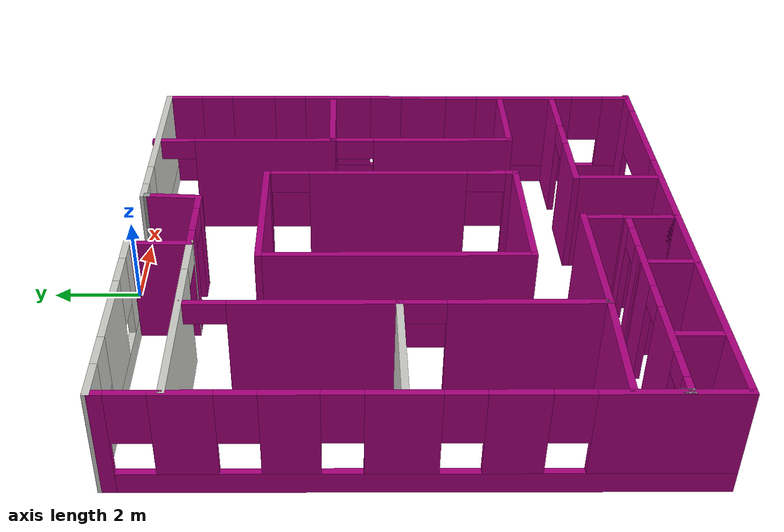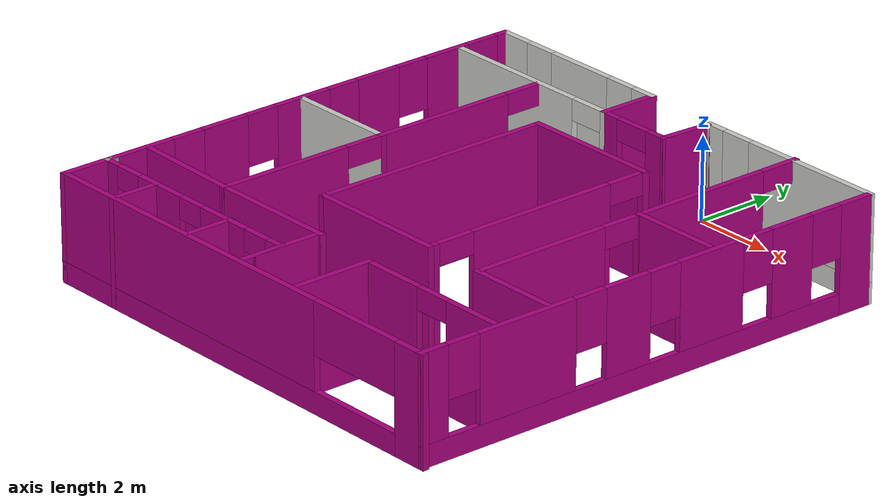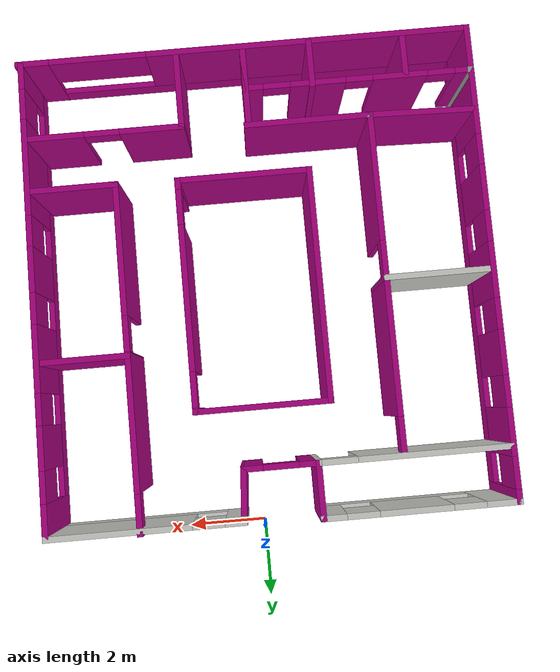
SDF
<sdf version="1.6">
 <model name="building1">
  <pose>-0.462899 -6.20828 0 0 -0 0</pose>
  <link name="Wall_0">
   <pose>-3.38263 6.03222 0 0 -0 0</pose>
   <visual name="Wall_0_Visual_0">
    <pose>-2.03324 0 1.25 0 -0 0</pose>
    <geometry><box><size>0.881817 0.15 2.5</size></box></geometry>
    <material>
     <script><uri>file://media/materials/scripts/gazebo.material</uri><name>Gazebo/CeilingTiled</name></script>
     <ambient>0.666667 0 0.498039 1</ambient>
    </material>
    <meta><layer>0</layer></meta>
   </visual>
   <collision name="Wall_0_Collision_0">
    <geometry><box><size>0.881817 0.15 2.5</size></box></geometry>
    <pose>-2.03324 0 1.25 0 -0 0</pose>
   </collision>
   <visual name="Wall_0_Visual_1">
    <pose>0.440909 0 0.25 0 -0 0</pose>
    <geometry><box><size>4.06648 0.15 0.5</size></box></geometry>
    <material>
     <script><uri>file://media/materials/scripts/gazebo.material</uri><name>Gazebo/CeilingTiled</name></script>
     <ambient>0.666667 0 0.498039 1</ambient>
    </material>
    <meta><layer>0</layer></meta>
   </visual>
   <collision name="Wall_0_Collision_1">
    <geometry><box><size>4.06648 0.15 0.5</size></box></geometry>
    <pose>0.440909 0 0.25 0 -0 0</pose>
   </collision>
   <visual name="Wall_0_Visual_2">
    <pose>0.115732 0 1.5 0 -0 0</pose>
    <geometry><box><size>1.81613 0.15 2</size></box></geometry>
    <material>
     <script><uri>file://media/materials/scripts/gazebo.material</uri><name>Gazebo/CeilingTiled</name></script>
     <ambient>0.666667 0 0.498039 1</ambient>
    </material>
    <meta><layer>0</layer></meta>
   </visual>
   <collision name="Wall_0_Collision_2">
    <geometry><box><size>1.81613 0.15 2</size></box></geometry>
    <pose>0.115732 0 1.5 0 -0 0</pose>
   </collision>
   <visual name="Wall_0_Visual_3">
    <pose>2.14897 0 1.5 0 -0 0</pose>
    <geometry><box><size>0.650352 0.15 2</size></box></geometry>
    <material>
     <script><uri>file://media/materials/scripts/gazebo.material</uri><name>Gazebo/CeilingTiled</name></script>
     <ambient>0.666667 0 0.498039 1</ambient>
    </material>
    <meta><layer>0</layer></meta>
   </visual>
   <collision name="Wall_0_Collision_3">
    <geometry><box><size>0.650352 0.15 2</size></box></geometry>
    <pose>2.14897 0 1.5 0 -0 0</pose>
   </collision>
   <visual name="Wall_0_Visual_4">
    <pose>-1.19233 0 1.9 0 -0 0</pose>
    <geometry><box><size>0.8 0.15 1.2</size></box></geometry>
    <material>
     <script><uri>file://media/materials/scripts/gazebo.material</uri><name>Gazebo/CeilingTiled</name></script>
     <ambient>0.666667 0 0.498039 1</ambient>
    </material>
    <meta><layer>0</layer></meta>
   </visual>
   <collision name="Wall_0_Collision_4">
    <geometry><box><size>0.8 0.15 1.2</size></box></geometry>
    <pose>-1.19233 0 1.9 0 -0 0</pose>
   </collision>
   <visual name="Wall_0_Visual_5">
    <pose>1.4238 0 1.9 0 -0 0</pose>
    <geometry><box><size>0.8 0.15 1.2</size></box></geometry>
    <material>
     <script><uri>file://media/materials/scripts/gazebo.material</uri><name>Gazebo/CeilingTiled</name></script>
     <ambient>0.666667 0 0.498039 1</ambient>
    </material>
    <meta><layer>0</layer></meta>
   </visual>
   <collision name="Wall_0_Collision_5">
    <geometry><box><size>0.8 0.15 1.2</size></box></geometry>
    <pose>1.4238 0 1.9 0 -0 0</pose>
   </collision>
  </link>
  <link name="Wall_1">
   <collision name="Wall_1_Collision">
    <geometry><box><size>1.5 0.15 2.5</size></box></geometry>
    <pose>0 0 1.25 0 -0 0</pose>
   </collision>
   <visual name="Wall_1_Visual">
    <pose>0 0 1.25 0 -0 0</pose>
    <geometry><box><size>1.5 0.15 2.5</size></box></geometry>
    <material>
     <script><uri>file://media/materials/scripts/gazebo.material</uri><name>Gazebo/Grey</name></script>
     <ambient>0.666667 0 0.498039 1</ambient>
    </material>
    <meta><layer>0</layer></meta>
   </visual>
   <pose>-0.983483 5.35722 0 0 0 -1.5708</pose>
  </link>
  <link name="Wall_12">
   <pose>0.020366 -6.03005 0 0 -0 3.14159</pose>
   <visual name="Wall_12_Visual_0">
    <pose>-5.39102 0 1.25 0 -0 0</pose>
    <geometry><box><size>0.866268 0.15 2.5</size></box></geometry>
    <material>
     <script><uri>file://media/materials/scripts/gazebo.material</uri><name>Gazebo/Grey</name></script>
     <ambient>0.666667 0 0.498039 1</ambient>
    </material>
    <meta><layer>0</layer></meta>
   </visual>
   <collision name="Wall_12_Collision_0">
    <geometry><box><size>0.866268 0.15 2.5</size></box></geometry>
    <pose>-5.39102 0 1.25 0 -0 0</pose>
   </collision>
   <visual name="Wall_12_Visual_1">
    <pose>0.433134 0 0.25 0 -0 0</pose>
    <geometry><box><size>10.782 0.15 0.5</size></box></geometry>
    <material>
     <script><uri>file://media/materials/scripts/gazebo.material</uri><name>Gazebo/Grey</name></script>
     <ambient>0.666667 0 0.498039 1</ambient>
    </material>
    <meta><layer>0</layer></meta>
   </visual>
   <collision name="Wall_12_Collision_1">
    <geometry><box><size>10.782 0.15 0.5</size></box></geometry>
    <pose>0.433134 0 0.25 0 -0 0</pose>
   </collision>
   <visual name="Wall_12_Visual_2">
    <pose>1.68313 0 1.5 0 -0 0</pose>
    <geometry><box><size>8.28203 0.15 2</size></box></geometry>
    <material>
     <script><uri>file://media/materials/scripts/gazebo.material</uri><name>Gazebo/Grey</name></script>
     <ambient>0.666667 0 0.498039 1</ambient>
    </material>
    <meta><layer>0</layer></meta>
   </visual>
   <collision name="Wall_12_Collision_2">
    <geometry><box><size>8.28203 0.15 2</size></box></geometry>
    <pose>1.68313 0 1.5 0 -0 0</pose>
   </collision>
   <visual name="Wall_12_Visual_3">
    <pose>-3.70788 0 1.9 0 -0 0</pose>
    <geometry><box><size>2.5 0.15 1.2</size></box></geometry>
    <material>
     <script><uri>file://media/materials/scripts/gazebo.material</uri><name>Gazebo/Grey</name></script>
     <ambient>0.666667 0 0.498039 1</ambient>
    </material>
    <meta><layer>0</layer></meta>
   </visual>
   <collision name="Wall_12_Collision_3">
    <geometry><box><size>2.5 0.15 1.2</size></box></geometry>
    <pose>-3.70788 0 1.9 0 -0 0</pose>
   </collision>
  </link>
  <link name="Wall_16">
   <pose>3.49934 3.82862 0 0 0 -1.5708</pose>
   <visual name="Wall_16_Visual_0">
    <pose>-2.18389 0 1.25 0 -0 0</pose>
    <geometry><box><size>0.132229 0.15 2.5</size></box></geometry>
    <material>
     <script><uri>file://media/materials/scripts/gazebo.material</uri><name>Gazebo/Grey</name></script>
     <ambient>0.666667 0 0.498039 1</ambient>
    </material>
    <meta><layer>0</layer></meta>
   </visual>
   <collision name="Wall_16_Collision_0">
    <geometry><box><size>0.132229 0.15 2.5</size></box></geometry>
    <pose>-2.18389 0 1.25 0 -0 0</pose>
   </collision>
   <visual name="Wall_16_Visual_1">
    <pose>0.516114 0 1.25 0 -0 0</pose>
    <geometry><box><size>3.46777 0.15 2.5</size></box></geometry>
    <material>
     <script><uri>file://media/materials/scripts/gazebo.material</uri><name>Gazebo/Grey</name></script>
     <ambient>0.666667 0 0.498039 1</ambient>
    </material>
    <meta><layer>0</layer></meta>
   </visual>
   <collision name="Wall_16_Collision_1">
    <geometry><box><size>3.46777 0.15 2.5</size></box></geometry>
    <pose>0.516114 0 1.25 0 -0 0</pose>
   </collision>
   <visual name="Wall_16_Visual_2">
    <pose>-1.66777 0 2.25 0 -0 0</pose>
    <geometry><box><size>0.9 0.15 0.5</size></box></geometry>
    <material>
     <script><uri>file://media/materials/scripts/gazebo.material</uri><name>Gazebo/Grey</name></script>
     <ambient>0.666667 0 0.498039 1</ambient>
    </material>
    <meta><layer>0</layer></meta>
   </visual>
   <collision name="Wall_16_Collision_2">
    <geometry><box><size>0.9 0.15 0.5</size></box></geometry>
    <pose>-1.66777 0 2.25 0 -0 0</pose>
   </collision>
  </link>
  <link name="Wall_18">
   <collision name="Wall_18_Collision">
    <geometry><box><size>2.25 0.15 2.5</size></box></geometry>
    <pose>0 0 1.25 0 -0 0</pose>
   </collision>
   <visual name="Wall_18_Visual">
    <pose>0 0 1.25 0 -0 0</pose>
    <geometry><box><size>2.25 0.15 2.5</size></box></geometry>
    <material>
     <script><uri>file://media/materials/scripts/gazebo.material</uri><name>Gazebo/Grey</name></script>
     <ambient>0.666667 0 0.498039 1</ambient>
    </material>
    <meta><layer>0</layer></meta>
   </visual>
   <pose>4.54934 1.65362 0 0 -0 0</pose>
  </link>
  <link name="Wall_2">
   <pose>-0.058483 4.68222 0 0 -0 0</pose>
   <visual name="Wall_2_Visual_0">
    <pose>-0.725121 0 1.25 0 -0 0</pose>
    <geometry><box><size>0.549758 0.15 2.5</size></box></geometry>
    <material>
     <script><uri>file://media/materials/scripts/gazebo.material</uri><name>Gazebo/Grey</name></script>
     <ambient>0.666667 0 0.498039 1</ambient>
    </material>
    <meta><layer>0</layer></meta>
   </visual>
   <collision name="Wall_2_Collision_0">
    <geometry><box><size>0.549758 0.15 2.5</size></box></geometry>
    <pose>-0.725121 0 1.25 0 -0 0</pose>
   </collision>
   <visual name="Wall_2_Visual_1">
    <pose>0.724879 0 1.25 0 -0 0</pose>
    <geometry><box><size>0.550242 0.15 2.5</size></box></geometry>
    <material>
     <script><uri>file://media/materials/scripts/gazebo.material</uri><name>Gazebo/Grey</name></script>
     <ambient>0.666667 0 0.498039 1</ambient>
    </material>
    <meta><layer>0</layer></meta>
   </visual>
   <collision name="Wall_2_Collision_1">
    <geometry><box><size>0.550242 0.15 2.5</size></box></geometry>
    <pose>0.724879 0 1.25 0 -0 0</pose>
   </collision>
   <visual name="Wall_2_Visual_2">
    <pose>-0.000242 0 2.25 0 -0 0</pose>
    <geometry><box><size>0.9 0.15 0.5</size></box></geometry>
    <material>
     <script><uri>file://media/materials/scripts/gazebo.material</uri><name>Gazebo/Grey</name></script>
     <ambient>0.666667 0 0.498039 1</ambient>
    </material>
    <meta><layer>0</layer></meta>
   </visual>
   <collision name="Wall_2_Collision_2">
    <geometry><box><size>0.9 0.15 0.5</size></box></geometry>
    <pose>-0.000242 0 2.25 0 -0 0</pose>
   </collision>
  </link>
  <link name="Wall_20">
   <pose>3.49934 -0.521379 0 0 0 -1.5708</pose>
   <visual name="Wall_20_Visual_0">
    <pose>-2.16037 0 1.25 0 -0 0</pose>
    <geometry><box><size>0.179262 0.15 2.5</size></box></geometry>
    <material>
     <script><uri>file://media/materials/scripts/gazebo.material</uri><name>Gazebo/Grey</name></script>
     <ambient>0.666667 0 0.498039 1</ambient>
    </material>
    <meta><layer>0</layer></meta>
   </visual>
   <collision name="Wall_20_Collision_0">
    <geometry><box><size>0.179262 0.15 2.5</size></box></geometry>
    <pose>-2.16037 0 1.25 0 -0 0</pose>
   </collision>
   <visual name="Wall_20_Visual_1">
    <pose>0.539631 0 1.25 0 -0 0</pose>
    <geometry><box><size>3.42074 0.15 2.5</size></box></geometry>
    <material>
     <script><uri>file://media/materials/scripts/gazebo.material</uri><name>Gazebo/Grey</name></script>
     <ambient>0.666667 0 0.498039 1</ambient>
    </material>
    <meta><layer>0</layer></meta>
   </visual>
   <collision name="Wall_20_Collision_1">
    <geometry><box><size>3.42074 0.15 2.5</size></box></geometry>
    <pose>0.539631 0 1.25 0 -0 0</pose>
   </collision>
   <visual name="Wall_20_Visual_2">
    <pose>-1.62074 0 2.25 0 -0 0</pose>
    <geometry><box><size>0.9 0.15 0.5</size></box></geometry>
    <material>
     <script><uri>file://media/materials/scripts/gazebo.material</uri><name>Gazebo/Grey</name></script>
     <ambient>0.666667 0 0.498039 1</ambient>
    </material>
    <meta><layer>0</layer></meta>
   </visual>
   <collision name="Wall_20_Collision_2">
    <geometry><box><size>0.9 0.15 0.5</size></box></geometry>
    <pose>-1.62074 0 2.25 0 -0 0</pose>
   </collision>
  </link>
  <link name="Wall_22">
   <collision name="Wall_22_Collision">
    <geometry><box><size>2.25 0.15 2.5</size></box></geometry>
    <pose>0 0 1.25 0 -0 0</pose>
   </collision>
   <visual name="Wall_22_Visual">
    <pose>0 0 1.25 0 -0 0</pose>
    <geometry><box><size>2.25 0.15 2.5</size></box></geometry>
    <material>
     <script><uri>file://media/materials/scripts/gazebo.material</uri><name>Gazebo/Grey</name></script>
     <ambient>0.666667 0 0.498039 1</ambient>
    </material>
    <meta><layer>0</layer></meta>
   </visual>
   <pose>4.54934 -2.69638 0 0 -0 0</pose>
  </link>
  <link name="Wall_28">
   <pose>-3.35848 4.68222 0 0 -0 3.14159</pose>
   <visual name="Wall_28_Visual_0">
    <pose>-2.37591 0 1.25 0 -0 0</pose>
    <geometry><box><size>0.148179 0.15 2.5</size></box></geometry>
    <material>
     <script><uri>file://media/materials/scripts/gazebo.material</uri><name>Gazebo/CeilingTiled</name></script>
     <ambient>0.666667 0 0.498039 1</ambient>
    </material>
    <meta><layer>0</layer></meta>
   </visual>
   <collision name="Wall_28_Collision_0">
    <geometry><box><size>0.148179 0.15 2.5</size></box></geometry>
    <pose>-2.37591 0 1.25 0 -0 0</pose>
   </collision>
   <visual name="Wall_28_Visual_1">
    <pose>0.52409 0 1.25 0 -0 0</pose>
    <geometry><box><size>3.85182 0.15 2.5</size></box></geometry>
    <material>
     <script><uri>file://media/materials/scripts/gazebo.material</uri><name>Gazebo/CeilingTiled</name></script>
     <ambient>0.666667 0 0.498039 1</ambient>
    </material>
    <meta><layer>0</layer></meta>
   </visual>
   <collision name="Wall_28_Collision_1">
    <geometry><box><size>3.85182 0.15 2.5</size></box></geometry>
    <pose>0.52409 0 1.25 0 -0 0</pose>
   </collision>
   <visual name="Wall_28_Visual_2">
    <pose>-1.85182 0 2.25 0 -0 0</pose>
    <geometry><box><size>0.9 0.15 0.5</size></box></geometry>
    <material>
     <script><uri>file://media/materials/scripts/gazebo.material</uri><name>Gazebo/CeilingTiled</name></script>
     <ambient>0.666667 0 0.498039 1</ambient>
    </material>
    <meta><layer>0</layer></meta>
   </visual>
   <collision name="Wall_28_Collision_2">
    <geometry><box><size>0.9 0.15 0.5</size></box></geometry>
    <pose>-1.85182 0 2.25 0 -0 0</pose>
   </collision>
  </link>
  <link name="Wall_3">
   <collision name="Wall_3_Collision">
    <geometry><box><size>1.33786 0.15 2.5</size></box></geometry>
    <pose>0 0 1.25 0 -0 0</pose>
   </collision>
   <visual name="Wall_3_Visual">
    <pose>0 0 1.25 0 -0 0</pose>
    <geometry><box><size>1.33786 0.15 2.5</size></box></geometry>
    <material>
     <script><uri>file://media/materials/scripts/gazebo.material</uri><name>Gazebo/Grey</name></script>
     <ambient>0.666667 0 0.498039 1</ambient>
    </material>
    <meta><layer>0</layer></meta>
   </visual>
   <pose>0.907768 5.27472 0 0 -0 1.50128</pose>
  </link>
  <link name="Wall_31">
   <pose>-3.09927 2.43683 0 0 0 -1.5708</pose>
   <visual name="Wall_31_Visual_0">
    <pose>-2.21992 0 1.25 0 -0 0</pose>
    <geometry><box><size>0.060164 0.15 2.5</size></box></geometry>
    <material>
     <script><uri>file://media/materials/scripts/gazebo.material</uri><name>Gazebo/Grey</name></script>
     <ambient>0.666667 0 0.498039 1</ambient>
    </material>
    <meta><layer>0</layer></meta>
   </visual>
   <collision name="Wall_31_Collision_0">
    <geometry><box><size>0.060164 0.15 2.5</size></box></geometry>
    <pose>-2.21992 0 1.25 0 -0 0</pose>
   </collision>
   <visual name="Wall_31_Visual_1">
    <pose>0.480082 0 1.25 0 -0 0</pose>
    <geometry><box><size>3.53984 0.15 2.5</size></box></geometry>
    <material>
     <script><uri>file://media/materials/scripts/gazebo.material</uri><name>Gazebo/Grey</name></script>
     <ambient>0.666667 0 0.498039 1</ambient>
    </material>
    <meta><layer>0</layer></meta>
   </visual>
   <collision name="Wall_31_Collision_1">
    <geometry><box><size>3.53984 0.15 2.5</size></box></geometry>
    <pose>0.480082 0 1.25 0 -0 0</pose>
   </collision>
   <visual name="Wall_31_Visual_2">
    <pose>-1.73984 0 2.25 0 -0 0</pose>
    <geometry><box><size>0.9 0.15 0.5</size></box></geometry>
    <material>
     <script><uri>file://media/materials/scripts/gazebo.material</uri><name>Gazebo/Grey</name></script>
     <ambient>0.666667 0 0.498039 1</ambient>
    </material>
    <meta><layer>0</layer></meta>
   </visual>
   <collision name="Wall_31_Collision_2">
    <geometry><box><size>0.9 0.15 0.5</size></box></geometry>
    <pose>-1.73984 0 2.25 0 -0 0</pose>
   </collision>
  </link>
  <link name="Wall_33">
   <collision name="Wall_33_Collision">
    <geometry><box><size>2.75 0.15 2.5</size></box></geometry>
    <pose>0 0 1.25 0 -0 0</pose>
   </collision>
   <visual name="Wall_33_Visual">
    <pose>0 0 1.25 0 -0 0</pose>
    <geometry><box><size>2.75 0.15 2.5</size></box></geometry>
    <material>
     <script><uri>file://media/materials/scripts/gazebo.material</uri><name>Gazebo/CeilingTiled</name></script>
     <ambient>0.666667 0 0.498039 1</ambient>
    </material>
    <meta><layer>0</layer></meta>
   </visual>
   <pose>-4.39927 0.261829 0 0 -0 3.14159</pose>
  </link>
  <link name="Wall_35">
   <pose>-3.09927 -1.84143 0 0 0 -1.5708</pose>
   <visual name="Wall_35_Visual_0">
    <pose>-2.11387 0 1.25 0 -0 0</pose>
    <geometry><box><size>0.128772 0.15 2.5</size></box></geometry>
    <material>
     <script><uri>file://media/materials/scripts/gazebo.material</uri><name>Gazebo/Grey</name></script>
     <ambient>0.666667 0 0.498039 1</ambient>
    </material>
    <meta><layer>0</layer></meta>
   </visual>
   <collision name="Wall_35_Collision_0">
    <geometry><box><size>0.128772 0.15 2.5</size></box></geometry>
    <pose>-2.11387 0 1.25 0 -0 0</pose>
   </collision>
   <visual name="Wall_35_Visual_1">
    <pose>0.514386 0 1.25 0 -0 0</pose>
    <geometry><box><size>3.32775 0.15 2.5</size></box></geometry>
    <material>
     <script><uri>file://media/materials/scripts/gazebo.material</uri><name>Gazebo/Grey</name></script>
     <ambient>0.666667 0 0.498039 1</ambient>
    </material>
    <meta><layer>0</layer></meta>
   </visual>
   <collision name="Wall_35_Collision_1">
    <geometry><box><size>3.32775 0.15 2.5</size></box></geometry>
    <pose>0.514386 0 1.25 0 -0 0</pose>
   </collision>
   <visual name="Wall_35_Visual_2">
    <pose>-1.59949 0 2.25 0 -0 0</pose>
    <geometry><box><size>0.9 0.15 0.5</size></box></geometry>
    <material>
     <script><uri>file://media/materials/scripts/gazebo.material</uri><name>Gazebo/Grey</name></script>
     <ambient>0.666667 0 0.498039 1</ambient>
    </material>
    <meta><layer>0</layer></meta>
   </visual>
   <collision name="Wall_35_Collision_2">
    <geometry><box><size>0.9 0.15 0.5</size></box></geometry>
    <pose>-1.59949 0 2.25 0 -0 0</pose>
   </collision>
  </link>
  <link name="Wall_37">
   <collision name="Wall_37_Collision">
    <geometry><box><size>2.75 0.15 2.5</size></box></geometry>
    <pose>0 0 1.25 0 -0 0</pose>
   </collision>
   <visual name="Wall_37_Visual">
    <pose>0 0 1.25 0 -0 0</pose>
    <geometry><box><size>2.75 0.15 2.5</size></box></geometry>
    <material>
     <script><uri>file://media/materials/scripts/gazebo.material</uri><name>Gazebo/Grey</name></script>
     <ambient>0.666667 0 0.498039 1</ambient>
    </material>
    <meta><layer>0</layer></meta>
   </visual>
   <pose>-4.39927 -3.90882 0 0 -0 3.11401</pose>
  </link>
  <link name="Wall_39">
   <collision name="Wall_39_Collision">
    <geometry><box><size>0.15 0.15 2.5</size></box></geometry>
    <pose>0 0 1.25 0 -0 0</pose>
   </collision>
   <visual name="Wall_39_Visual">
    <pose>0 0 1.25 0 -0 0</pose>
    <geometry><box><size>0.15 0.15 2.5</size></box></geometry>
    <material>
     <script><uri>file://media/materials/scripts/gazebo.material</uri><name>Gazebo/Grey</name></script>
     <ambient>1 1 1 1</ambient>
    </material>
    <meta><layer>0</layer></meta>
   </visual>
   <pose>-3.09927 -3.94469 0 0 -0 0</pose>
  </link>
  <link name="Wall_4">
   <collision name="Wall_4_Collision">
    <geometry><box><size>0.15 0.15 2.5</size></box></geometry>
    <pose>0 0 1.25 0 -0 0</pose>
   </collision>
   <visual name="Wall_4_Visual">
    <pose>0 0 1.25 0 -0 0</pose>
    <geometry><box><size>0.15 0.15 2.5</size></box></geometry>
    <material>
     <script><uri>file://media/materials/scripts/gazebo.material</uri><name>Gazebo/Grey</name></script>
     <ambient>1 1 1 1</ambient>
    </material>
    <meta><layer>0</layer></meta>
   </visual>
   <pose>0.94902 5.86721 0 0 -0 0</pose>
  </link>
  <link name="Wall_41">
   <pose>0.000733 -5.01317 0 0 0 -1.5708</pose>
   <visual name="Wall_41_Visual_0">
    <pose>0 0 1.25 0 -0 0</pose>
    <geometry><box><size>2 0.15 2.5</size></box></geometry>
    <material>
     <script><uri>file://media/materials/scripts/gazebo.material</uri><name>Gazebo/Grey</name></script>
     <ambient>0.666667 0 0.498039 1</ambient>
    </material>
    <meta><layer>0</layer></meta>
   </visual>
   <collision name="Wall_41_Collision_0">
    <geometry><box><size>2 0.15 2.5</size></box></geometry>
    <pose>0 0 1.25 0 -0 0</pose>
   </collision>
   <visual name="Wall_41_Visual_1">
    <pose>0.395037 0 1.25 0 -0 0</pose>
    <geometry><box><size>1.20992 0.15 2.5</size></box></geometry>
    <material>
     <script><uri>file://media/materials/scripts/gazebo.material</uri><name>Gazebo/Grey</name></script>
     <ambient>0.666667 0 0.498039 1</ambient>
    </material>
    <meta><layer>0</layer></meta>
   </visual>
   <collision name="Wall_41_Collision_1">
    <geometry><box><size>1.20992 0.15 2.5</size></box></geometry>
    <pose>0.395037 0 1.25 0 -0 0</pose>
   </collision>
  </link>
  <link name="Wall_43">
   <collision name="Wall_43_Collision">
    <geometry><box><size>0.3 0.15 2.5</size></box></geometry>
    <pose>0 0 1.25 0 -0 0</pose>
   </collision>
   <visual name="Wall_43_Visual">
    <pose>0 0 1.25 0 -0 0</pose>
    <geometry><box><size>0.3 0.15 2.5</size></box></geometry>
    <material>
     <script><uri>file://media/materials/scripts/gazebo.material</uri><name>Gazebo/Grey</name></script>
     <ambient>1 1 1 1</ambient>
    </material>
    <meta><layer>0</layer></meta>
   </visual>
   <pose>-5.78043 -4.84088 0 0 0 -1.5708</pose>
  </link>
  <link name="Wall_44">
   <pose>-2.95542 -4.91588 0 0 -0 0</pose>
   <visual name="Wall_44_Visual_0">
    <pose>-2.66063 0 1.25 0 -0 0</pose>
    <geometry><box><size>0.478736 0.15 2.5</size></box></geometry>
    <material>
     <script><uri>file://media/materials/scripts/gazebo.material</uri><name>Gazebo/Grey</name></script>
     <ambient>0.666667 0 0.498039 1</ambient>
    </material>
    <meta><layer>0</layer></meta>
   </visual>
   <collision name="Wall_44_Collision_0">
    <geometry><box><size>0.478736 0.15 2.5</size></box></geometry>
    <pose>-2.66063 0 1.25 0 -0 0</pose>
   </collision>
   <visual name="Wall_44_Visual_1">
    <pose>-1.02013 0 1.25 0 -0 0</pose>
    <geometry><box><size>1.40226 0.15 2.5</size></box></geometry>
    <material>
     <script><uri>file://media/materials/scripts/gazebo.material</uri><name>Gazebo/Grey</name></script>
     <ambient>0.666667 0 0.498039 1</ambient>
    </material>
    <meta><layer>0</layer></meta>
   </visual>
   <collision name="Wall_44_Collision_1">
    <geometry><box><size>1.40226 0.15 2.5</size></box></geometry>
    <pose>-1.02013 0 1.25 0 -0 0</pose>
   </collision>
   <visual name="Wall_44_Visual_2">
    <pose>1.09625 0 1.25 0 -0 0</pose>
    <geometry><box><size>1.4305 0.15 2.5</size></box></geometry>
    <material>
     <script><uri>file://media/materials/scripts/gazebo.material</uri><name>Gazebo/Grey</name></script>
     <ambient>0.666667 0 0.498039 1</ambient>
    </material>
    <meta><layer>0</layer></meta>
   </visual>
   <collision name="Wall_44_Collision_2">
    <geometry><box><size>1.4305 0.15 2.5</size></box></geometry>
    <pose>1.09625 0 1.25 0 -0 0</pose>
   </collision>
   <visual name="Wall_44_Visual_3">
    <pose>2.70575 0 1.25 0 -0 0</pose>
    <geometry><box><size>0.3885 0.15 2.5</size></box></geometry>
    <material>
     <script><uri>file://media/materials/scripts/gazebo.material</uri><name>Gazebo/Grey</name></script>
     <ambient>0.666667 0 0.498039 1</ambient>
    </material>
    <meta><layer>0</layer></meta>
   </visual>
   <collision name="Wall_44_Collision_3">
    <geometry><box><size>0.3885 0.15 2.5</size></box></geometry>
    <pose>2.70575 0 1.25 0 -0 0</pose>
   </collision>
   <visual name="Wall_44_Visual_4">
    <pose>-2.07126 0 2.25 0 -0 0</pose>
    <geometry><box><size>0.7 0.15 0.5</size></box></geometry>
    <material>
     <script><uri>file://media/materials/scripts/gazebo.material</uri><name>Gazebo/Grey</name></script>
     <ambient>0.666667 0 0.498039 1</ambient>
    </material>
    <meta><layer>0</layer></meta>
   </visual>
   <collision name="Wall_44_Collision_4">
    <geometry><box><size>0.7 0.15 0.5</size></box></geometry>
    <pose>-2.07126 0 2.25 0 -0 0</pose>
   </collision>
   <visual name="Wall_44_Visual_5">
    <pose>0.030998 0 2.25 0 -0 0</pose>
    <geometry><box><size>0.7 0.15 0.5</size></box></geometry>
    <material>
     <script><uri>file://media/materials/scripts/gazebo.material</uri><name>Gazebo/Grey</name></script>
     <ambient>0.666667 0 0.498039 1</ambient>
    </material>
    <meta><layer>0</layer></meta>
   </visual>
   <collision name="Wall_44_Collision_5">
    <geometry><box><size>0.7 0.15 0.5</size></box></geometry>
    <pose>0.030998 0 2.25 0 -0 0</pose>
   </collision>
   <visual name="Wall_44_Visual_6">
    <pose>2.1615 0 2.25 0 -0 0</pose>
    <geometry><box><size>0.7 0.15 0.5</size></box></geometry>
    <material>
     <script><uri>file://media/materials/scripts/gazebo.material</uri><name>Gazebo/Grey</name></script>
     <ambient>0.666667 0 0.498039 1</ambient>
    </material>
    <meta><layer>0</layer></meta>
   </visual>
   <collision name="Wall_44_Collision_6">
    <geometry><box><size>0.7 0.15 0.5</size></box></geometry>
    <pose>2.1615 0 2.25 0 -0 0</pose>
   </collision>
  </link>
  <link name="Wall_47">
   <collision name="Wall_47_Collision">
    <geometry><box><size>1.2 0.15 2.5</size></box></geometry>
    <pose>0 0 1.25 0 -0 0</pose>
   </collision>
   <visual name="Wall_47_Visual">
    <pose>0 0 1.25 0 -0 0</pose>
    <geometry><box><size>1.2 0.15 2.5</size></box></geometry>
    <material>
     <script><uri>file://media/materials/scripts/gazebo.material</uri><name>Gazebo/Grey</name></script>
     <ambient>0.666667 0 0.498039 1</ambient>
    </material>
    <meta><layer>0</layer></meta>
   </visual>
   <pose>-4.12099 -5.50733 0 0 0 -1.5708</pose>
  </link>
  <link name="Wall_49">
   <collision name="Wall_49_Collision">
    <geometry><box><size>1.25 0.15 2.5</size></box></geometry>
    <pose>0 0 1.25 0 -0 0</pose>
   </collision>
   <visual name="Wall_49_Visual">
    <pose>0 0 1.25 0 -0 0</pose>
    <geometry><box><size>1.25 0.15 2.5</size></box></geometry>
    <material>
     <script><uri>file://media/materials/scripts/gazebo.material</uri><name>Gazebo/Grey</name></script>
     <ambient>0.666667 0 0.498039 1</ambient>
    </material>
    <meta><layer>0</layer></meta>
   </visual>
   <pose>-1.71184 -5.43299 0 0 0 -1.5708</pose>
  </link>
  <link name="Wall_5">
   <pose>3.37402 5.94972 0 0 -0 0</pose>
   <visual name="Wall_5_Visual_0">
    <pose>-2.22472 0 1.25 0 -0 0</pose>
    <geometry><box><size>0.550552 0.15 2.5</size></box></geometry>
    <material>
     <script><uri>file://media/materials/scripts/gazebo.material</uri><name>Gazebo/CeilingTiled</name></script>
     <ambient>0.666667 0 0.498039 1</ambient>
    </material>
    <meta><layer>0</layer></meta>
   </visual>
   <collision name="Wall_5_Collision_0">
    <geometry><box><size>0.550552 0.15 2.5</size></box></geometry>
    <pose>-2.22472 0 1.25 0 -0 0</pose>
   </collision>
   <visual name="Wall_5_Visual_1">
    <pose>0.275276 0 0.25 0 -0 0</pose>
    <geometry><box><size>4.44945 0.15 0.5</size></box></geometry>
    <material>
     <script><uri>file://media/materials/scripts/gazebo.material</uri><name>Gazebo/CeilingTiled</name></script>
     <ambient>0.666667 0 0.498039 1</ambient>
    </material>
    <meta><layer>0</layer></meta>
   </visual>
   <collision name="Wall_5_Collision_1">
    <geometry><box><size>4.44945 0.15 0.5</size></box></geometry>
    <pose>0.275276 0 0.25 0 -0 0</pose>
   </collision>
   <visual name="Wall_5_Visual_2">
    <pose>0.675276 0 1.5 0 -0 0</pose>
    <geometry><box><size>3.64945 0.15 2</size></box></geometry>
    <material>
     <script><uri>file://media/materials/scripts/gazebo.material</uri><name>Gazebo/CeilingTiled</name></script>
     <ambient>0.666667 0 0.498039 1</ambient>
    </material>
    <meta><layer>0</layer></meta>
   </visual>
   <collision name="Wall_5_Collision_2">
    <geometry><box><size>3.64945 0.15 2</size></box></geometry>
    <pose>0.675276 0 1.5 0 -0 0</pose>
   </collision>
   <visual name="Wall_5_Visual_3">
    <pose>-1.54945 0 1.9 0 -0 0</pose>
    <geometry><box><size>0.8 0.15 1.2</size></box></geometry>
    <material>
     <script><uri>file://media/materials/scripts/gazebo.material</uri><name>Gazebo/CeilingTiled</name></script>
     <ambient>0.666667 0 0.498039 1</ambient>
    </material>
    <meta><layer>0</layer></meta>
   </visual>
   <collision name="Wall_5_Collision_3">
    <geometry><box><size>0.8 0.15 1.2</size></box></geometry>
    <pose>-1.54945 0 1.9 0 -0 0</pose>
   </collision>
  </link>
  <link name="Wall_51">
   <collision name="Wall_51_Collision">
    <geometry><box><size>3.5 0.15 2.5</size></box></geometry>
    <pose>0 0 1.25 0 -0 0</pose>
   </collision>
   <visual name="Wall_51_Visual">
    <pose>0 0 1.25 0 -0 0</pose>
    <geometry><box><size>3.5 0.15 2.5</size></box></geometry>
    <material>
     <script><uri>file://media/materials/scripts/gazebo.material</uri><name>Gazebo/Grey</name></script>
     <ambient>0.666667 0 0.498039 1</ambient>
    </material>
    <meta><layer>0</layer></meta>
   </visual>
   <pose>0.249996 3.19041 0 0 -0 3.14159</pose>
  </link>
  <link name="Wall_53">
   <pose>1.925 0.265413 0 0 0 -1.5708</pose>
   <visual name="Wall_53_Visual_0">
    <pose>-2.90999 0 1.25 0 -0 0</pose>
    <geometry><box><size>0.180017 0.15 2.5</size></box></geometry>
    <material>
     <script><uri>file://media/materials/scripts/gazebo.material</uri><name>Gazebo/Grey</name></script>
     <ambient>0.666667 0 0.498039 1</ambient>
    </material>
    <meta><layer>0</layer></meta>
   </visual>
   <collision name="Wall_53_Collision_0">
    <geometry><box><size>0.180017 0.15 2.5</size></box></geometry>
    <pose>-2.90999 0 1.25 0 -0 0</pose>
   </collision>
   <visual name="Wall_53_Visual_1">
    <pose>-0.064482 0 1.25 0 -0 0</pose>
    <geometry><box><size>3.711 0.15 2.5</size></box></geometry>
    <material>
     <script><uri>file://media/materials/scripts/gazebo.material</uri><name>Gazebo/Grey</name></script>
     <ambient>0.666667 0 0.498039 1</ambient>
    </material>
    <meta><layer>0</layer></meta>
   </visual>
   <collision name="Wall_53_Collision_1">
    <geometry><box><size>3.711 0.15 2.5</size></box></geometry>
    <pose>-0.064482 0 1.25 0 -0 0</pose>
   </collision>
   <visual name="Wall_53_Visual_2">
    <pose>2.84551 0 1.25 0 -0 0</pose>
    <geometry><box><size>0.308981 0.15 2.5</size></box></geometry>
    <material>
     <script><uri>file://media/materials/scripts/gazebo.material</uri><name>Gazebo/Grey</name></script>
     <ambient>0.666667 0 0.498039 1</ambient>
    </material>
    <meta><layer>0</layer></meta>
   </visual>
   <collision name="Wall_53_Collision_2">
    <geometry><box><size>0.308981 0.15 2.5</size></box></geometry>
    <pose>2.84551 0 1.25 0 -0 0</pose>
   </collision>
   <visual name="Wall_53_Visual_3">
    <pose>-2.36998 0 2.25 0 -0 0</pose>
    <geometry><box><size>0.9 0.15 0.5</size></box></geometry>
    <material>
     <script><uri>file://media/materials/scripts/gazebo.material</uri><name>Gazebo/Grey</name></script>
     <ambient>0.666667 0 0.498039 1</ambient>
    </material>
    <meta><layer>0</layer></meta>
   </visual>
   <collision name="Wall_53_Collision_3">
    <geometry><box><size>0.9 0.15 0.5</size></box></geometry>
    <pose>-2.36998 0 2.25 0 -0 0</pose>
   </collision>
   <visual name="Wall_53_Visual_4">
    <pose>2.24102 0 2.25 0 -0 0</pose>
    <geometry><box><size>0.9 0.15 0.5</size></box></geometry>
    <material>
     <script><uri>file://media/materials/scripts/gazebo.material</uri><name>Gazebo/Grey</name></script>
     <ambient>0.666667 0 0.498039 1</ambient>
    </material>
    <meta><layer>0</layer></meta>
   </visual>
   <collision name="Wall_53_Collision_4">
    <geometry><box><size>0.9 0.15 0.5</size></box></geometry>
    <pose>2.24102 0 2.25 0 -0 0</pose>
   </collision>
  </link>
  <link name="Wall_54">
   <collision name="Wall_54_Collision">
    <geometry><box><size>3.5 0.15 2.5</size></box></geometry>
    <pose>0 0 1.25 0 -0 0</pose>
   </collision>
   <visual name="Wall_54_Visual">
    <pose>0 0 1.25 0 -0 0</pose>
    <geometry><box><size>3.5 0.15 2.5</size></box></geometry>
    <material>
     <script><uri>file://media/materials/scripts/gazebo.material</uri><name>Gazebo/Grey</name></script>
     <ambient>0.666667 0 0.498039 1</ambient>
    </material>
    <meta><layer>0</layer></meta>
   </visual>
   <pose>0.249996 -2.65959 0 0 -0 3.14159</pose>
  </link>
  <link name="Wall_56">
   <collision name="Wall_56_Collision">
    <geometry><box><size>6 0.15 2.5</size></box></geometry>
    <pose>0 0 1.25 0 -0 0</pose>
   </collision>
   <visual name="Wall_56_Visual">
    <pose>0 0 1.25 0 -0 0</pose>
    <geometry><box><size>6 0.15 2.5</size></box></geometry>
    <material>
     <script><uri>file://media/materials/scripts/gazebo.material</uri><name>Gazebo/Grey</name></script>
     <ambient>0.666667 0 0.498039 1</ambient>
    </material>
    <meta><layer>0</layer></meta>
   </visual>
   <pose>-1.425 0.265413 0 0 0 -1.5708</pose>
  </link>
  <link name="Wall_58">
   <pose>3.63641 -4.05382 0 0 -0 3.14159</pose>
   <visual name="Wall_58_Visual_0">
    <pose>-1.28314 0 1.25 0 -0 0</pose>
    <geometry><box><size>1.43372 0.15 2.5</size></box></geometry>
    <material>
     <script><uri>file://media/materials/scripts/gazebo.material</uri><name>Gazebo/Grey</name></script>
     <ambient>0.666667 0 0.498039 1</ambient>
    </material>
    <meta><layer>0</layer></meta>
   </visual>
   <collision name="Wall_58_Collision_0">
    <geometry><box><size>1.43372 0.15 2.5</size></box></geometry>
    <pose>-1.28314 0 1.25 0 -0 0</pose>
   </collision>
   <visual name="Wall_58_Visual_1">
    <pose>1.16686 0 1.25 0 -0 0</pose>
    <geometry><box><size>1.66629 0.15 2.5</size></box></geometry>
    <material>
     <script><uri>file://media/materials/scripts/gazebo.material</uri><name>Gazebo/Grey</name></script>
     <ambient>0.666667 0 0.498039 1</ambient>
    </material>
    <meta><layer>0</layer></meta>
   </visual>
   <collision name="Wall_58_Collision_1">
    <geometry><box><size>1.66629 0.15 2.5</size></box></geometry>
    <pose>1.16686 0 1.25 0 -0 0</pose>
   </collision>
   <visual name="Wall_58_Visual_2">
    <pose>-0.116285 0 2.25 0 -0 0</pose>
    <geometry><box><size>0.9 0.15 0.5</size></box></geometry>
    <material>
     <script><uri>file://media/materials/scripts/gazebo.material</uri><name>Gazebo/Grey</name></script>
     <ambient>0.666667 0 0.498039 1</ambient>
    </material>
    <meta><layer>0</layer></meta>
   </visual>
   <collision name="Wall_58_Collision_2">
    <geometry><box><size>0.9 0.15 0.5</size></box></geometry>
    <pose>-0.116285 0 2.25 0 -0 0</pose>
   </collision>
  </link>
  <link name="Wall_59">
   <collision name="Wall_59_Collision">
    <geometry><box><size>2 0.15 2.5</size></box></geometry>
    <pose>0 0 1.25 0 -0 0</pose>
   </collision>
   <visual name="Wall_59_Visual">
    <pose>0 0 1.25 0 -0 0</pose>
    <geometry><box><size>2 0.15 2.5</size></box></geometry>
    <material>
     <script><uri>file://media/materials/scripts/gazebo.material</uri><name>Gazebo/Grey</name></script>
     <ambient>0.666667 0 0.498039 1</ambient>
    </material>
    <meta><layer>0</layer></meta>
   </visual>
   <pose>1.71141 -4.97882 0 0 0 -1.5708</pose>
  </link>
  <link name="Wall_6">
   <pose>5.74889 -0.08142 0 0 0 -1.57922</pose>
   <visual name="Wall_6_Visual_0">
    <pose>-5.59937 0 1.25 0 -0 0</pose>
    <geometry><box><size>0.848943 0.15 2.5</size></box></geometry>
    <material>
     <script><uri>file://media/materials/scripts/gazebo.material</uri><name>Gazebo/Grey</name></script>
     <ambient>0.666667 0 0.498039 1</ambient>
    </material>
    <meta><layer>0</layer></meta>
   </visual>
   <collision name="Wall_6_Collision_0">
    <geometry><box><size>0.848943 0.15 2.5</size></box></geometry>
    <pose>-5.59937 0 1.25 0 -0 0</pose>
   </collision>
   <visual name="Wall_6_Visual_1">
    <pose>0.424471 0 0.25 0 -0 0</pose>
    <geometry><box><size>11.1987 0.15 0.5</size></box></geometry>
    <material>
     <script><uri>file://media/materials/scripts/gazebo.material</uri><name>Gazebo/Grey</name></script>
     <ambient>0.666667 0 0.498039 1</ambient>
    </material>
    <meta><layer>0</layer></meta>
   </visual>
   <collision name="Wall_6_Collision_1">
    <geometry><box><size>11.1987 0.15 0.5</size></box></geometry>
    <pose>0.424471 0 0.25 0 -0 0</pose>
   </collision>
   <visual name="Wall_6_Visual_2">
    <pose>-3.82125 0 1.5 0 -0 0</pose>
    <geometry><box><size>1.10729 0.15 2</size></box></geometry>
    <material>
     <script><uri>file://media/materials/scripts/gazebo.material</uri><name>Gazebo/Grey</name></script>
     <ambient>0.666667 0 0.498039 1</ambient>
    </material>
    <meta><layer>0</layer></meta>
   </visual>
   <collision name="Wall_6_Collision_2">
    <geometry><box><size>1.10729 0.15 2</size></box></geometry>
    <pose>-3.82125 0 1.5 0 -0 0</pose>
   </collision>
   <visual name="Wall_6_Visual_3">
    <pose>-1.61048 0 1.5 0 -0 0</pose>
    <geometry><box><size>1.71426 0.15 2</size></box></geometry>
    <material>
     <script><uri>file://media/materials/scripts/gazebo.material</uri><name>Gazebo/Grey</name></script>
     <ambient>0.666667 0 0.498039 1</ambient>
    </material>
    <meta><layer>0</layer></meta>
   </visual>
   <collision name="Wall_6_Collision_3">
    <geometry><box><size>1.71426 0.15 2</size></box></geometry>
    <pose>-1.61048 0 1.5 0 -0 0</pose>
   </collision>
   <visual name="Wall_6_Visual_4">
    <pose>0.630949 0 1.5 0 -0 0</pose>
    <geometry><box><size>1.1686 0.15 2</size></box></geometry>
    <material>
     <script><uri>file://media/materials/scripts/gazebo.material</uri><name>Gazebo/Grey</name></script>
     <ambient>0.666667 0 0.498039 1</ambient>
    </material>
    <meta><layer>0</layer></meta>
   </visual>
   <collision name="Wall_6_Collision_4">
    <geometry><box><size>1.1686 0.15 2</size></box></geometry>
    <pose>0.630949 0 1.5 0 -0 0</pose>
   </collision>
   <visual name="Wall_6_Visual_5">
    <pose>3.26027 0 1.5 0 -0 0</pose>
    <geometry><box><size>2.49004 0.15 2</size></box></geometry>
    <material>
     <script><uri>file://media/materials/scripts/gazebo.material</uri><name>Gazebo/Grey</name></script>
     <ambient>0.666667 0 0.498039 1</ambient>
    </material>
    <meta><layer>0</layer></meta>
   </visual>
   <collision name="Wall_6_Collision_5">
    <geometry><box><size>2.49004 0.15 2</size></box></geometry>
    <pose>3.26027 0 1.5 0 -0 0</pose>
   </collision>
   <visual name="Wall_6_Visual_6">
    <pose>5.66457 0 1.5 0 -0 0</pose>
    <geometry><box><size>0.718553 0.15 2</size></box></geometry>
    <material>
     <script><uri>file://media/materials/scripts/gazebo.material</uri><name>Gazebo/Grey</name></script>
     <ambient>0.666667 0 0.498039 1</ambient>
    </material>
    <meta><layer>0</layer></meta>
   </visual>
   <collision name="Wall_6_Collision_6">
    <geometry><box><size>0.718553 0.15 2</size></box></geometry>
    <pose>5.66457 0 1.5 0 -0 0</pose>
   </collision>
   <visual name="Wall_6_Visual_7">
    <pose>-4.7749 0 1.9 0 -0 0</pose>
    <geometry><box><size>0.8 0.15 1.2</size></box></geometry>
    <material>
     <script><uri>file://media/materials/scripts/gazebo.material</uri><name>Gazebo/Grey</name></script>
     <ambient>0.666667 0 0.498039 1</ambient>
    </material>
    <meta><layer>0</layer></meta>
   </visual>
   <collision name="Wall_6_Collision_7">
    <geometry><box><size>0.8 0.15 1.2</size></box></geometry>
    <pose>-4.7749 0 1.9 0 -0 0</pose>
   </collision>
   <visual name="Wall_6_Visual_8">
    <pose>-2.86761 0 1.9 0 -0 0</pose>
    <geometry><box><size>0.8 0.15 1.2</size></box></geometry>
    <material>
     <script><uri>file://media/materials/scripts/gazebo.material</uri><name>Gazebo/Grey</name></script>
     <ambient>0.666667 0 0.498039 1</ambient>
    </material>
    <meta><layer>0</layer></meta>
   </visual>
   <collision name="Wall_6_Collision_8">
    <geometry><box><size>0.8 0.15 1.2</size></box></geometry>
    <pose>-2.86761 0 1.9 0 -0 0</pose>
   </collision>
   <visual name="Wall_6_Visual_9">
    <pose>-0.353349 0 1.9 0 -0 0</pose>
    <geometry><box><size>0.8 0.15 1.2</size></box></geometry>
    <material>
     <script><uri>file://media/materials/scripts/gazebo.material</uri><name>Gazebo/Grey</name></script>
     <ambient>0.666667 0 0.498039 1</ambient>
    </material>
    <meta><layer>0</layer></meta>
   </visual>
   <collision name="Wall_6_Collision_9">
    <geometry><box><size>0.8 0.15 1.2</size></box></geometry>
    <pose>-0.353349 0 1.9 0 -0 0</pose>
   </collision>
   <visual name="Wall_6_Visual_10">
    <pose>1.61525 0 1.9 0 -0 0</pose>
    <geometry><box><size>0.8 0.15 1.2</size></box></geometry>
    <material>
     <script><uri>file://media/materials/scripts/gazebo.material</uri><name>Gazebo/Grey</name></script>
     <ambient>0.666667 0 0.498039 1</ambient>
    </material>
    <meta><layer>0</layer></meta>
   </visual>
   <collision name="Wall_6_Collision_10">
    <geometry><box><size>0.8 0.15 1.2</size></box></geometry>
    <pose>1.61525 0 1.9 0 -0 0</pose>
   </collision>
   <visual name="Wall_6_Visual_11">
    <pose>4.90529 0 1.9 0 -0 0</pose>
    <geometry><box><size>0.8 0.15 1.2</size></box></geometry>
    <material>
     <script><uri>file://media/materials/scripts/gazebo.material</uri><name>Gazebo/Grey</name></script>
     <ambient>0.666667 0 0.498039 1</ambient>
    </material>
    <meta><layer>0</layer></meta>
   </visual>
   <collision name="Wall_6_Collision_11">
    <geometry><box><size>0.8 0.15 1.2</size></box></geometry>
    <pose>4.90529 0 1.9 0 -0 0</pose>
   </collision>
  </link>
  <link name="Wall_61">
   <collision name="Wall_61_Collision">
    <geometry><box><size>3.3 0.15 2.5</size></box></geometry>
    <pose>0 0 1.25 0 -0 0</pose>
   </collision>
   <visual name="Wall_61_Visual">
    <pose>0 0 1.25 0 -0 0</pose>
    <geometry><box><size>3.3 0.15 2.5</size></box></geometry>
    <material>
     <script><uri>file://media/materials/scripts/gazebo.material</uri><name>Gazebo/Grey</name></script>
     <ambient>0.666667 0 0.498039 1</ambient>
    </material>
    <meta><layer>0</layer></meta>
   </visual>
   <pose>-1.52427 -3.94469 0 0 -0 0</pose>
  </link>
  <link name="Wall_8">
   <pose>-5.79066 0.001083 0 0 0 -1.57227</pose>
   <visual name="Wall_8_Visual_0">
    <pose>-5.91807 0 1.25 0 -0 0</pose>
    <geometry><box><size>0.376149 0.15 2.5</size></box></geometry>
    <material>
     <script><uri>file://media/materials/scripts/gazebo.material</uri><name>Gazebo/Grey</name></script>
     <ambient>0.666667 0 0.498039 1</ambient>
    </material>
    <meta><layer>0</layer></meta>
   </visual>
   <collision name="Wall_8_Collision_0">
    <geometry><box><size>0.376149 0.15 2.5</size></box></geometry>
    <pose>-5.91807 0 1.25 0 -0 0</pose>
   </collision>
   <visual name="Wall_8_Visual_1">
    <pose>0.188074 0 0.25 0 -0 0</pose>
    <geometry><box><size>11.8361 0.15 0.5</size></box></geometry>
    <material>
     <script><uri>file://media/materials/scripts/gazebo.material</uri><name>Gazebo/Grey</name></script>
     <ambient>0.666667 0 0.498039 1</ambient>
    </material>
    <meta><layer>0</layer></meta>
   </visual>
   <collision name="Wall_8_Collision_1">
    <geometry><box><size>11.8361 0.15 0.5</size></box></geometry>
    <pose>0.188074 0 0.25 0 -0 0</pose>
   </collision>
   <visual name="Wall_8_Visual_2">
    <pose>-4.33076 0 1.5 0 -0 0</pose>
    <geometry><box><size>1.19846 0.15 2</size></box></geometry>
    <material>
     <script><uri>file://media/materials/scripts/gazebo.material</uri><name>Gazebo/Grey</name></script>
     <ambient>0.666667 0 0.498039 1</ambient>
    </material>
    <meta><layer>0</layer></meta>
   </visual>
   <collision name="Wall_8_Collision_2">
    <geometry><box><size>1.19846 0.15 2</size></box></geometry>
    <pose>-4.33076 0 1.5 0 -0 0</pose>
   </collision>
   <visual name="Wall_8_Visual_3">
    <pose>-2.36452 0 1.5 0 -0 0</pose>
    <geometry><box><size>1.13402 0.15 2</size></box></geometry>
    <material>
     <script><uri>file://media/materials/scripts/gazebo.material</uri><name>Gazebo/Grey</name></script>
     <ambient>0.666667 0 0.498039 1</ambient>
    </material>
    <meta><layer>0</layer></meta>
   </visual>
   <collision name="Wall_8_Collision_3">
    <geometry><box><size>1.13402 0.15 2</size></box></geometry>
    <pose>-2.36452 0 1.5 0 -0 0</pose>
   </collision>
   <visual name="Wall_8_Visual_4">
    <pose>-0.280769 0 1.5 0 -0 0</pose>
    <geometry><box><size>1.43347 0.15 2</size></box></geometry>
    <material>
     <script><uri>file://media/materials/scripts/gazebo.material</uri><name>Gazebo/Grey</name></script>
     <ambient>0.666667 0 0.498039 1</ambient>
    </material>
    <meta><layer>0</layer></meta>
   </visual>
   <collision name="Wall_8_Collision_4">
    <geometry><box><size>1.43347 0.15 2</size></box></geometry>
    <pose>-0.280769 0 1.5 0 -0 0</pose>
   </collision>
   <visual name="Wall_8_Visual_5">
    <pose>1.826 0 1.5 0 -0 0</pose>
    <geometry><box><size>1.18007 0.15 2</size></box></geometry>
    <material>
     <script><uri>file://media/materials/scripts/gazebo.material</uri><name>Gazebo/Grey</name></script>
     <ambient>0.666667 0 0.498039 1</ambient>
    </material>
    <meta><layer>0</layer></meta>
   </visual>
   <collision name="Wall_8_Collision_5">
    <geometry><box><size>1.18007 0.15 2</size></box></geometry>
    <pose>1.826 0 1.5 0 -0 0</pose>
   </collision>
   <visual name="Wall_8_Visual_6">
    <pose>4.66109 0 1.5 0 -0 0</pose>
    <geometry><box><size>2.89011 0.15 2</size></box></geometry>
    <material>
     <script><uri>file://media/materials/scripts/gazebo.material</uri><name>Gazebo/Grey</name></script>
     <ambient>0.666667 0 0.498039 1</ambient>
    </material>
    <meta><layer>0</layer></meta>
   </visual>
   <collision name="Wall_8_Collision_6">
    <geometry><box><size>2.89011 0.15 2</size></box></geometry>
    <pose>4.66109 0 1.5 0 -0 0</pose>
   </collision>
   <visual name="Wall_8_Visual_7">
    <pose>-5.32999 0 1.9 0 -0 0</pose>
    <geometry><box><size>0.8 0.15 1.2</size></box></geometry>
    <material>
     <script><uri>file://media/materials/scripts/gazebo.material</uri><name>Gazebo/Grey</name></script>
     <ambient>0.666667 0 0.498039 1</ambient>
    </material>
    <meta><layer>0</layer></meta>
   </visual>
   <collision name="Wall_8_Collision_7">
    <geometry><box><size>0.8 0.15 1.2</size></box></geometry>
    <pose>-5.32999 0 1.9 0 -0 0</pose>
   </collision>
   <visual name="Wall_8_Visual_8">
    <pose>-3.33153 0 1.9 0 -0 0</pose>
    <geometry><box><size>0.8 0.15 1.2</size></box></geometry>
    <material>
     <script><uri>file://media/materials/scripts/gazebo.material</uri><name>Gazebo/Grey</name></script>
     <ambient>0.666667 0 0.498039 1</ambient>
    </material>
    <meta><layer>0</layer></meta>
   </visual>
   <collision name="Wall_8_Collision_8">
    <geometry><box><size>0.8 0.15 1.2</size></box></geometry>
    <pose>-3.33153 0 1.9 0 -0 0</pose>
   </collision>
   <visual name="Wall_8_Visual_9">
    <pose>-1.3975 0 1.9 0 -0 0</pose>
    <geometry><box><size>0.8 0.15 1.2</size></box></geometry>
    <material>
     <script><uri>file://media/materials/scripts/gazebo.material</uri><name>Gazebo/Grey</name></script>
     <ambient>0.666667 0 0.498039 1</ambient>
    </material>
    <meta><layer>0</layer></meta>
   </visual>
   <collision name="Wall_8_Collision_9">
    <geometry><box><size>0.8 0.15 1.2</size></box></geometry>
    <pose>-1.3975 0 1.9 0 -0 0</pose>
   </collision>
   <visual name="Wall_8_Visual_10">
    <pose>0.835966 0 1.9 0 -0 0</pose>
    <geometry><box><size>0.8 0.15 1.2</size></box></geometry>
    <material>
     <script><uri>file://media/materials/scripts/gazebo.material</uri><name>Gazebo/Grey</name></script>
     <ambient>0.666667 0 0.498039 1</ambient>
    </material>
    <meta><layer>0</layer></meta>
   </visual>
   <collision name="Wall_8_Collision_10">
    <geometry><box><size>0.8 0.15 1.2</size></box></geometry>
    <pose>0.835966 0 1.9 0 -0 0</pose>
   </collision>
   <visual name="Wall_8_Visual_11">
    <pose>2.81604 0 1.9 0 -0 0</pose>
    <geometry><box><size>0.8 0.15 1.2</size></box></geometry>
    <material>
     <script><uri>file://media/materials/scripts/gazebo.material</uri><name>Gazebo/Grey</name></script>
     <ambient>0.666667 0 0.498039 1</ambient>
    </material>
    <meta><layer>0</layer></meta>
   </visual>
   <collision name="Wall_8_Collision_11">
    <geometry><box><size>0.8 0.15 1.2</size></box></geometry>
    <pose>2.81604 0 1.9 0 -0 0</pose>
   </collision>
  </link>
  <static>1</static>
 </model>
</sdf>
